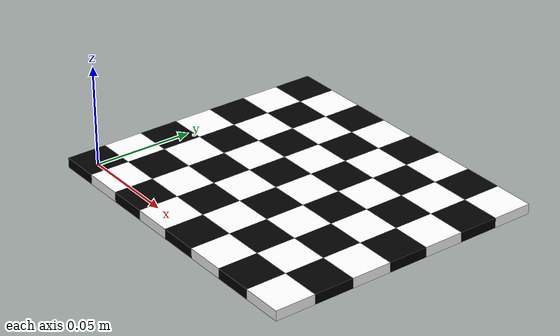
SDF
<?xml version='1.0'?>
<sdf version="1.4">
    <model name="checkerboard">
      <pose>0 0 0 0 0 0</pose>
      <static>false</static>
        <link name="checkerboard">
          <pose>0.0 0.0 0.0 0.0 0.0 0.0</pose>
          <inertial>
            <mass>0.0000001</mass>
            <inertia> <!-- interias are tricky to compute -->
              <!-- http://answers.gazebosim.org/question/4372/the-inertia-matrix-explained/ -->
              <ixx>0.083</ixx>       <!-- for a box: ixx = 0.083 * mass * (y*y + z*z) -->
              <ixy>0.0</ixy>         <!-- for a box: ixy = 0 -->
              <ixz>0.0</ixz>         <!-- for a box: ixz = 0 -->
              <iyy>0.083</iyy>       <!-- for a box: iyy = 0.083 * mass * (x*x + z*z) -->
              <iyz>0.0</iyz>         <!-- for a box: iyz = 0 -->
              <izz>0.083</izz>       <!-- for a box: izz = 0.083 * mass * (x*x + y*y) -->
            </inertia>
          </inertial>
          <collision name="collision">
            <geometry>
              <box>
                <size>0.02 0.02 0.005</size>
              </box>
            </geometry>
          </collision>
          <visual name="sqr11">
            <geometry>
              <box>
                <size>0.02 0.02 0.005</size>
              </box>
            </geometry>
        <material>
              <ambient>0 0 0 1</ambient>
              <diffuse>0 0 0 1</diffuse>
              <specular>0.1 0.1 0.1 1</specular>
              <emissive>0 0 0 0</emissive>
            </material>
          </visual>

          <visual name="sqr12">
          <pose>0.02 0.0 0.0 0.0 0.0 0.0</pose>
            <geometry>
              <box>
                <size>0.02 0.02 0.005</size>
              </box>
            </geometry>
        <material>
              <ambient>1 1 1 1</ambient>
              <diffuse>1 1 1 1</diffuse>
              <specular>0.1 0.1 0.1 1</specular>
              <emissive>0 0 0 0</emissive>
            </material>
          </visual>
          <visual name="sqr13">
          <pose>0.04 0.0 0.0 0.0 0.0 0.0</pose>
            <geometry>
              <box>
                <size>0.02 0.02 0.005</size>
              </box>
            </geometry>
        <material>
              <ambient>0 0 0 1</ambient>
              <diffuse>0 0 0 1</diffuse>
              <specular>0.1 0.1 0.1 1</specular>
              <emissive>0 0 0 0</emissive>
            </material>
          </visual>
          <visual name="sqr14">
          <pose>0.06 0.0 0.0 0.0 0.0 0.0</pose>
            <geometry>
              <box>
                <size>0.02 0.02 0.005</size>
              </box>
            </geometry>
        <material>
              <ambient>1 1 1 1</ambient>
              <diffuse>1 1 1 1</diffuse>
              <specular>0.1 0.1 0.1 1</specular>
              <emissive>0 0 0 0</emissive>
            </material>
          </visual>
          <visual name="sqr15">
          <pose>0.08 0.0 0.0 0.0 0.0 0.0</pose>
            <geometry>
              <box>
                <size>0.02 0.02 0.005</size>
              </box>
            </geometry>
        <material>
              <ambient>0 0 0 1</ambient>
              <diffuse>0 0 0 1</diffuse>
              <specular>0.1 0.1 0.1 1</specular>
              <emissive>0 0 0 0</emissive>
            </material>
          </visual>
          <visual name="sqr16">
          <pose>0.10 0.0 0.0 0.0 0.0 0.0</pose>
            <geometry>
              <box>
                <size>0.02 0.02 0.005</size>
              </box>
            </geometry>
        <material>
              <ambient>1 1 1 1</ambient>
              <diffuse>1 1 1 1</diffuse>
              <specular>0.1 0.1 0.1 1</specular>
              <emissive>0 0 0 0</emissive>
            </material>
          </visual>
          <visual name="sqr17">
          <pose>0.12 0.0 0.0 0.0 0.0 0.0</pose>
            <geometry>
              <box>
                <size>0.02 0.02 0.005</size>
              </box>
            </geometry>
        <material>
              <ambient>0 0 0 1</ambient>
              <diffuse>0 0 0 1</diffuse>
              <specular>0.1 0.1 0.1 1</specular>
              <emissive>0 0 0 0</emissive>
            </material>
          </visual>
          <visual name="sqr18">
          <pose>0.14 0.0 0.0 0.0 0.0 0.0</pose>
            <geometry>
              <box>
                <size>0.02 0.02 0.005</size>
              </box>
            </geometry>
        <material>
              <ambient>1 1 1 1</ambient>
              <diffuse>1 1 1 1</diffuse>
              <specular>0.1 0.1 0.1 1</specular>
              <emissive>0 0 0 0</emissive>
            </material>
          </visual>
          <visual name="sqr21">
          <pose>0.0 0.02 0.0 0.0 0.0 0.0</pose>
            <geometry>
              <box>
                <size>0.02 0.02 0.005</size>
              </box>
            </geometry>
        <material>
              <ambient>1 1 1 1</ambient>
              <diffuse>1 1 1 1</diffuse>
              <specular>0.1 0.1 0.1 1</specular>
              <emissive>0 0 0 0</emissive>
            </material>
          </visual>

          <visual name="sqr31">
          <pose>0.0 0.04 0.0 0.0 0.0 0.0</pose>
            <geometry>
              <box>
                <size>0.02 0.02 0.005</size>
              </box>
            </geometry>
        <material>
              <ambient>0 0 0 1</ambient>
              <diffuse>0 0 0 1</diffuse>
              <specular>0.1 0.1 0.1 1</specular>
              <emissive>0 0 0 0</emissive>
            </material>
          </visual>

          <visual name="sqr32">
          <pose>0.02 0.04 0.0 0.0 0.0 0.0</pose>
            <geometry>
              <box>
                <size>0.02 0.02 0.005</size>
              </box>
            </geometry>
        <material>
              <ambient>1 1 1 1</ambient>
              <diffuse>1 1 1 1</diffuse>
              <specular>0.1 0.1 0.1 1</specular>
              <emissive>0 0 0 0</emissive>
            </material>
          </visual>
          <visual name="sqr33">
          <pose>0.04 0.04 0.0 0.0 0.0 0.0</pose>
            <geometry>
              <box>
                <size>0.02 0.02 0.005</size>
              </box>
            </geometry>
        <material>
              <ambient>0 0 0 1</ambient>
              <diffuse>0 0 0 1</diffuse>
              <specular>0.1 0.1 0.1 1</specular>
              <emissive>0 0 0 0</emissive>
            </material>
          </visual>
          <visual name="sqr34">
          <pose>0.06 0.04 0.0 0.0 0.0 0.0</pose>
            <geometry>
              <box>
                <size>0.02 0.02 0.005</size>
              </box>
            </geometry>
        <material>
              <ambient>1 1 1 1</ambient>
              <diffuse>1 1 1 1</diffuse>
              <specular>0.1 0.1 0.1 1</specular>
              <emissive>0 0 0 0</emissive>
            </material>
          </visual>
          <visual name="sqr35">
          <pose>0.08 0.04 0.0 0.0 0.0 0.0</pose>
            <geometry>
              <box>
                <size>0.02 0.02 0.005</size>
              </box>
            </geometry>
        <material>
              <ambient>0 0 0 1</ambient>
              <diffuse>0 0 0 1</diffuse>
              <specular>0.1 0.1 0.1 1</specular>
              <emissive>0 0 0 0</emissive>
            </material>
          </visual>
          <visual name="sqr36">
          <pose>0.10 0.04 0.0 0.0 0.0 0.0</pose>
            <geometry>
              <box>
                <size>0.02 0.02 0.005</size>
              </box>
            </geometry>
        <material>
              <ambient>1 1 1 1</ambient>
              <diffuse>1 1 1 1</diffuse>
              <specular>0.1 0.1 0.1 1</specular>
              <emissive>0 0 0 0</emissive>
            </material>
          </visual>
          <visual name="sqr37">
          <pose>0.12 0.04 0.0 0.0 0.0 0.0</pose>
            <geometry>
              <box>
                <size>0.02 0.02 0.005</size>
              </box>
            </geometry>
        <material>
              <ambient>0 0 0 1</ambient>
              <diffuse>0 0 0 1</diffuse>
              <specular>0.1 0.1 0.1 1</specular>
              <emissive>0 0 0 0</emissive>
            </material>
          </visual>
          <visual name="sqr38">
          <pose>0.14 0.04 0.0 0.0 0.0 0.0</pose>
            <geometry>
              <box>
                <size>0.02 0.02 0.005</size>
              </box>
            </geometry>
        <material>
              <ambient>1 1 1 1</ambient>
              <diffuse>1 1 1 1</diffuse>
              <specular>0.1 0.1 0.1 1</specular>
              <emissive>0 0 0 0</emissive>
            </material>
          </visual>

          <visual name="sqr51">
          <pose>0.0 0.08 0.0 0.0 0.0 0.0</pose>
            <geometry>
              <box>
                <size>0.02 0.02 0.005</size>
              </box>
            </geometry>
        <material>
              <ambient>0 0 0 1</ambient>
              <diffuse>0 0 0 1</diffuse>
              <specular>0.1 0.1 0.1 1</specular>
              <emissive>0 0 0 0</emissive>
            </material>
          </visual>

          <visual name="sqr52">
          <pose>0.02 0.08 0.0 0.0 0.0 0.0</pose>
            <geometry>
              <box>
                <size>0.02 0.02 0.005</size>
              </box>
            </geometry>
        <material>
              <ambient>1 1 1 1</ambient>
              <diffuse>1 1 1 1</diffuse>
              <specular>0.1 0.1 0.1 1</specular>
              <emissive>0 0 0 0</emissive>
            </material>
          </visual>
          <visual name="sqr53">
          <pose>0.04 0.08 0.0 0.0 0.0 0.0</pose>
            <geometry>
              <box>
                <size>0.02 0.02 0.005</size>
              </box>
            </geometry>
        <material>
              <ambient>0 0 0 1</ambient>
              <diffuse>0 0 0 1</diffuse>
              <specular>0.1 0.1 0.1 1</specular>
              <emissive>0 0 0 0</emissive>
            </material>
          </visual>
          <visual name="sqr54">
          <pose>0.06 0.08 0.0 0.0 0.0 0.0</pose>
            <geometry>
              <box>
                <size>0.02 0.02 0.005</size>
              </box>
            </geometry>
        <material>
              <ambient>1 1 1 1</ambient>
              <diffuse>1 1 1 1</diffuse>
              <specular>0.1 0.1 0.1 1</specular>
              <emissive>0 0 0 0</emissive>
            </material>
          </visual>
          <visual name="sqr55">
          <pose>0.08 0.08 0.0 0.0 0.0 0.0</pose>
            <geometry>
              <box>
                <size>0.02 0.02 0.005</size>
              </box>
            </geometry>
        <material>
              <ambient>0 0 0 1</ambient>
              <diffuse>0 0 0 1</diffuse>
              <specular>0.1 0.1 0.1 1</specular>
              <emissive>0 0 0 0</emissive>
            </material>
          </visual>
          <visual name="sqr56">
          <pose>0.10 0.08 0.0 0.0 0.0 0.0</pose>
            <geometry>
              <box>
                <size>0.02 0.02 0.005</size>
              </box>
            </geometry>
        <material>
              <ambient>1 1 1 1</ambient>
              <diffuse>1 1 1 1</diffuse>
              <specular>0.1 0.1 0.1 1</specular>
              <emissive>0 0 0 0</emissive>
            </material>
          </visual>
          <visual name="sqr57">
          <pose>0.12 0.08 0.0 0.0 0.0 0.0</pose>
            <geometry>
              <box>
                <size>0.02 0.02 0.005</size>
              </box>
            </geometry>
        <material>
              <ambient>0 0 0 1</ambient>
              <diffuse>0 0 0 1</diffuse>
              <specular>0.1 0.1 0.1 1</specular>
              <emissive>0 0 0 0</emissive>
            </material>
          </visual>
          <visual name="sqr58">
          <pose>0.14 0.08 0.0 0.0 0.0 0.0</pose>
            <geometry>
              <box>
                <size>0.02 0.02 0.005</size>
              </box>
            </geometry>
        <material>
              <ambient>1 1 1 1</ambient>
              <diffuse>1 1 1 1</diffuse>
              <specular>0.1 0.1 0.1 1</specular>
              <emissive>0 0 0 0</emissive>
            </material>
          </visual>

          <visual name="sqr71">
          <pose>0.0 0.12 0.0 0.0 0.0 0.0</pose>
            <geometry>
              <box>
                <size>0.02 0.02 0.005</size>
              </box>
            </geometry>
        <material>
              <ambient>0 0 0 1</ambient>
              <diffuse>0 0 0 1</diffuse>
              <specular>0.1 0.1 0.1 1</specular>
              <emissive>0 0 0 0</emissive>
            </material>
          </visual>

          <visual name="sqr72">
          <pose>0.02 0.12 0.0 0.0 0.0 0.0</pose>
            <geometry>
              <box>
                <size>0.02 0.02 0.005</size>
              </box>
            </geometry>
        <material>
              <ambient>1 1 1 1</ambient>
              <diffuse>1 1 1 1</diffuse>
              <specular>0.1 0.1 0.1 1</specular>
              <emissive>0 0 0 0</emissive>
            </material>
          </visual>
          <visual name="sqr73">
          <pose>0.04 0.12 0.0 0.0 0.0 0.0</pose>
            <geometry>
              <box>
                <size>0.02 0.02 0.005</size>
              </box>
            </geometry>
        <material>
              <ambient>0 0 0 1</ambient>
              <diffuse>0 0 0 1</diffuse>
              <specular>0.1 0.1 0.1 1</specular>
              <emissive>0 0 0 0</emissive>
            </material>
          </visual>
          <visual name="sqr74">
          <pose>0.06 0.12 0.0 0.0 0.0 0.0</pose>
            <geometry>
              <box>
                <size>0.02 0.02 0.005</size>
              </box>
            </geometry>
        <material>
              <ambient>1 1 1 1</ambient>
              <diffuse>1 1 1 1</diffuse>
              <specular>0.1 0.1 0.1 1</specular>
              <emissive>0 0 0 0</emissive>
            </material>
          </visual>
          <visual name="sqr75">
          <pose>0.08 0.12 0.0 0.0 0.0 0.0</pose>
            <geometry>
              <box>
                <size>0.02 0.02 0.005</size>
              </box>
            </geometry>
        <material>
              <ambient>0 0 0 1</ambient>
              <diffuse>0 0 0 1</diffuse>
              <specular>0.1 0.1 0.1 1</specular>
              <emissive>0 0 0 0</emissive>
            </material>
          </visual>
          <visual name="sqr76">
          <pose>0.10 0.12 0.0 0.0 0.0 0.0</pose>
            <geometry>
              <box>
                <size>0.02 0.02 0.005</size>
              </box>
            </geometry>
        <material>
              <ambient>1 1 1 1</ambient>
              <diffuse>1 1 1 1</diffuse>
              <specular>0.1 0.1 0.1 1</specular>
              <emissive>0 0 0 0</emissive>
            </material>
          </visual>
          <visual name="sqr77">
          <pose>0.12 0.12 0.0 0.0 0.0 0.0</pose>
            <geometry>
              <box>
                <size>0.02 0.02 0.005</size>
              </box>
            </geometry>
        <material>
              <ambient>0 0 0 1</ambient>
              <diffuse>0 0 0 1</diffuse>
              <specular>0.1 0.1 0.1 1</specular>
              <emissive>0 0 0 0</emissive>
            </material>
          </visual>
          <visual name="sqr78">
          <pose>0.14 0.12 0.0 0.0 0.0 0.0</pose>
            <geometry>
              <box>
                <size>0.02 0.02 0.005</size>
              </box>
            </geometry>
        <material>
              <ambient>1 1 1 1</ambient>
              <diffuse>1 1 1 1</diffuse>
              <specular>0.1 0.1 0.1 1</specular>
              <emissive>0 0 0 0</emissive>
            </material>
          </visual>

          <visual name="sqr21">
          <pose>0.0 0.02 0.0 0.0 0.0 0.0</pose>
            <geometry>
              <box>
                <size>0.02 0.02 0.005</size>
              </box>
            </geometry>
        <material>
              <ambient>1 1 1 1</ambient>
              <diffuse>1 1 1 1</diffuse>
              <specular>0.1 0.1 0.1 1</specular>
              <emissive>0 0 0 0</emissive>
            </material>
          </visual>

          <visual name="sqr22">
          <pose>0.02 0.02 0.0 0.0 0.0 0.0</pose>
            <geometry>
              <box>
                <size>0.02 0.02 0.005</size>
              </box>
            </geometry>
        <material>
              <ambient>0 0 0 1</ambient>
              <diffuse>0 0 0 1</diffuse>
              <specular>0.1 0.1 0.1 1</specular>
              <emissive>0 0 0 0</emissive>
            </material>
          </visual>

          <visual name="sqr23">
          <pose>0.04 0.02 0.0 0.0 0.0 0.0</pose>
            <geometry>
              <box>
                <size>0.02 0.02 0.005</size>
              </box>
            </geometry>
        <material>
              <ambient>1 1 1 1</ambient>
              <diffuse>1 1 1 1</diffuse>
              <specular>0.1 0.1 0.1 1</specular>
              <emissive>0 0 0 0</emissive>
            </material>
          </visual>
          <visual name="sqr24">
          <pose>0.06 0.02 0.0 0.0 0.0 0.0</pose>
            <geometry>
              <box>
                <size>0.02 0.02 0.005</size>
              </box>
            </geometry>
        <material>
              <ambient>0 0 0 1</ambient>
              <diffuse>0 0 0 1</diffuse>
              <specular>0.1 0.1 0.1 1</specular>
              <emissive>0 0 0 0</emissive>
            </material>
          </visual>
          <visual name="sqr25">
          <pose>0.08 0.02 0.0 0.0 0.0 0.0</pose>
            <geometry>
              <box>
                <size>0.02 0.02 0.005</size>
              </box>
            </geometry>
        <material>
              <ambient>1 1 1 1</ambient>
              <diffuse>1 1 1 1</diffuse>
              <specular>0.1 0.1 0.1 1</specular>
              <emissive>0 0 0 0</emissive>
            </material>
          </visual>
          <visual name="sqr26">
          <pose>0.10 0.02 0.0 0.0 0.0 0.0</pose>
            <geometry>
              <box>
                <size>0.02 0.02 0.005</size>
              </box>
            </geometry>
        <material>
              <ambient>0 0 0 1</ambient>
              <diffuse>0 0 0 1</diffuse>
              <specular>0.1 0.1 0.1 1</specular>
              <emissive>0 0 0 0</emissive>
            </material>
          </visual>
          <visual name="sqr27">
          <pose>0.12 0.02 0.0 0.0 0.0 0.0</pose>
            <geometry>
              <box>
                <size>0.02 0.02 0.005</size>
              </box>
            </geometry>
        <material>
              <ambient>1 1 1 1</ambient>
              <diffuse>1 1 1 1</diffuse>
              <specular>0.1 0.1 0.1 1</specular>
              <emissive>0 0 0 0</emissive>
            </material>
          </visual>
          <visual name="sqr28">
          <pose>0.14 0.02 0.0 0.0 0.0 0.0</pose>
            <geometry>
              <box>
                <size>0.02 0.02 0.005</size>
              </box>
            </geometry>
        <material>
              <ambient>0 0 0 1</ambient>
              <diffuse>0 0 0 1</diffuse>
              <specular>0.1 0.1 0.1 1</specular>
              <emissive>0 0 0 0</emissive>
            </material>
          </visual>

         <visual name="sqr41">
          <pose>0.0 0.06 0.0 0.0 0.0 0.0</pose>
            <geometry>
              <box>
                <size>0.02 0.02 0.005</size>
              </box>
            </geometry>
        <material>
              <ambient>1 1 1 1</ambient>
              <diffuse>1 1 1 1</diffuse>
              <specular>0.1 0.1 0.1 1</specular>
              <emissive>0 0 0 0</emissive>
            </material>
          </visual>

          <visual name="sqr42">
          <pose>0.02 0.06 0.0 0.0 0.0 0.0</pose>
            <geometry>
              <box>
                <size>0.02 0.02 0.005</size>
              </box>
            </geometry>
        <material>
              <ambient>0 0 0 1</ambient>
              <diffuse>0 0 0 1</diffuse>
              <specular>0.1 0.1 0.1 1</specular>
              <emissive>0 0 0 0</emissive>
            </material>
          </visual>

          <visual name="sqr43">
          <pose>0.04 0.06 0.0 0.0 0.0 0.0</pose>
            <geometry>
              <box>
                <size>0.02 0.02 0.005</size>
              </box>
            </geometry>
        <material>
              <ambient>1 1 1 1</ambient>
              <diffuse>1 1 1 1</diffuse>
              <specular>0.1 0.1 0.1 1</specular>
              <emissive>0 0 0 0</emissive>
            </material>
          </visual>
          <visual name="sqr44">
          <pose>0.06 0.06 0.0 0.0 0.0 0.0</pose>
            <geometry>
              <box>
                <size>0.02 0.02 0.005</size>
              </box>
            </geometry>
        <material>
              <ambient>0 0 0 1</ambient>
              <diffuse>0 0 0 1</diffuse>
              <specular>0.1 0.1 0.1 1</specular>
              <emissive>0 0 0 0</emissive>
            </material>
          </visual>
          <visual name="sqr45">
          <pose>0.08 0.06 0.0 0.0 0.0 0.0</pose>
            <geometry>
              <box>
                <size>0.02 0.02 0.005</size>
              </box>
            </geometry>
        <material>
              <ambient>1 1 1 1</ambient>
              <diffuse>1 1 1 1</diffuse>
              <specular>0.1 0.1 0.1 1</specular>
              <emissive>0 0 0 0</emissive>
            </material>
          </visual>
          <visual name="sqr46">
          <pose>0.10 0.06 0.0 0.0 0.0 0.0</pose>
            <geometry>
              <box>
                <size>0.02 0.02 0.005</size>
              </box>
            </geometry>
        <material>
              <ambient>0 0 0 1</ambient>
              <diffuse>0 0 0 1</diffuse>
              <specular>0.1 0.1 0.1 1</specular>
              <emissive>0 0 0 0</emissive>
            </material>
          </visual>
          <visual name="sqr47">
          <pose>0.12 0.06 0.0 0.0 0.0 0.0</pose>
            <geometry>
              <box>
                <size>0.02 0.02 0.005</size>
              </box>
            </geometry>
        <material>
              <ambient>1 1 1 1</ambient>
              <diffuse>1 1 1 1</diffuse>
              <specular>0.1 0.1 0.1 1</specular>
              <emissive>0 0 0 0</emissive>
            </material>
          </visual>
          <visual name="sqr48">
          <pose>0.14 0.06 0.0 0.0 0.0 0.0</pose>
            <geometry>
              <box>
                <size>0.02 0.02 0.005</size>
              </box>
            </geometry>
        <material>
              <ambient>0 0 0 1</ambient>
              <diffuse>0 0 0 1</diffuse>
              <specular>0.1 0.1 0.1 1</specular>
              <emissive>0 0 0 0</emissive>
            </material>
          </visual>

         <visual name="sqr61">
          <pose>0.0 0.10 0.0 0.0 0.0 0.0</pose>
            <geometry>
              <box>
                <size>0.02 0.02 0.005</size>
              </box>
            </geometry>
        <material>
              <ambient>1 1 1 1</ambient>
              <diffuse>1 1 1 1</diffuse>
              <specular>0.1 0.1 0.1 1</specular>
              <emissive>0 0 0 0</emissive>
            </material>
          </visual>

          <visual name="sqr62">
          <pose>0.02 0.10 0.0 0.0 0.0 0.0</pose>
            <geometry>
              <box>
                <size>0.02 0.02 0.005</size>
              </box>
            </geometry>
        <material>
              <ambient>0 0 0 1</ambient>
              <diffuse>0 0 0 1</diffuse>
              <specular>0.1 0.1 0.1 1</specular>
              <emissive>0 0 0 0</emissive>
            </material>
          </visual>

          <visual name="sqr63">
          <pose>0.04 0.10 0.0 0.0 0.0 0.0</pose>
            <geometry>
              <box>
                <size>0.02 0.02 0.005</size>
              </box>
            </geometry>
        <material>
              <ambient>1 1 1 1</ambient>
              <diffuse>1 1 1 1</diffuse>
              <specular>0.1 0.1 0.1 1</specular>
              <emissive>0 0 0 0</emissive>
            </material>
          </visual>
          <visual name="sqr64">
          <pose>0.06 0.10 0.0 0.0 0.0 0.0</pose>
            <geometry>
              <box>
                <size>0.02 0.02 0.005</size>
              </box>
            </geometry>
        <material>
              <ambient>0 0 0 1</ambient>
              <diffuse>0 0 0 1</diffuse>
              <specular>0.1 0.1 0.1 1</specular>
              <emissive>0 0 0 0</emissive>
            </material>
          </visual>
          <visual name="sqr65">
          <pose>0.08 0.10 0.0 0.0 0.0 0.0</pose>
            <geometry>
              <box>
                <size>0.02 0.02 0.005</size>
              </box>
            </geometry>
        <material>
              <ambient>1 1 1 1</ambient>
              <diffuse>1 1 1 1</diffuse>
              <specular>0.1 0.1 0.1 1</specular>
              <emissive>0 0 0 0</emissive>
            </material>
          </visual>
          <visual name="sqr66">
          <pose>0.10 0.10 0.0 0.0 0.0 0.0</pose>
            <geometry>
              <box>
                <size>0.02 0.02 0.005</size>
              </box>
            </geometry>
        <material>
              <ambient>0 0 0 1</ambient>
              <diffuse>0 0 0 1</diffuse>
              <specular>0.1 0.1 0.1 1</specular>
              <emissive>0 0 0 0</emissive>
            </material>
          </visual>
          <visual name="sqr67">
          <pose>0.12 0.10 0.0 0.0 0.0 0.0</pose>
            <geometry>
              <box>
                <size>0.02 0.02 0.005</size>
              </box>
            </geometry>
        <material>
              <ambient>1 1 1 1</ambient>
              <diffuse>1 1 1 1</diffuse>
              <specular>0.1 0.1 0.1 1</specular>
              <emissive>0 0 0 0</emissive>
            </material>
          </visual>
          <visual name="sqr68">
          <pose>0.14 0.10 0.0 0.0 0.0 0.0</pose>
            <geometry>
              <box>
                <size>0.02 0.02 0.005</size>
              </box>
            </geometry>
        <material>
              <ambient>0 0 0 1</ambient>
              <diffuse>0 0 0 1</diffuse>
              <specular>0.1 0.1 0.1 1</specular>
              <emissive>0 0 0 0</emissive>
            </material>
          </visual>
      </link>
    </model>
</sdf>
